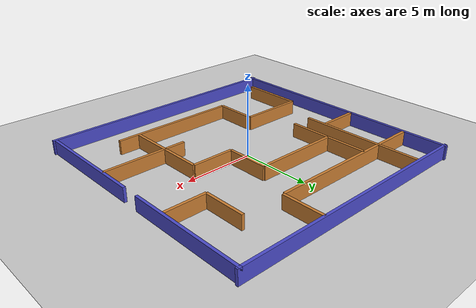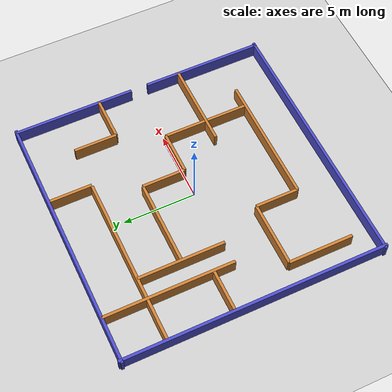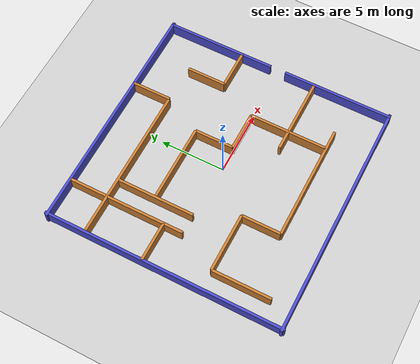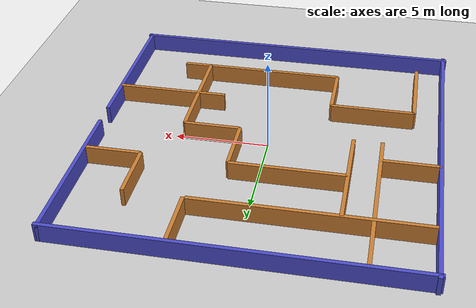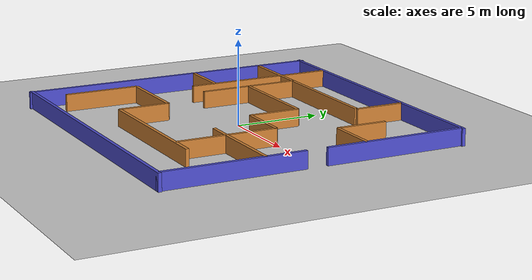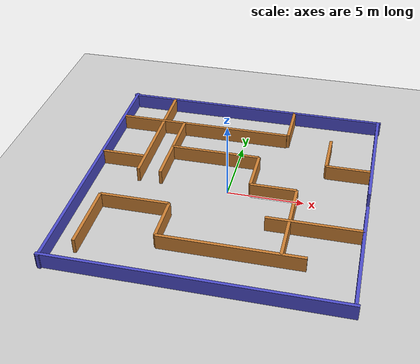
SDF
<?xml version="1.0" ?>
<sdf version="1.8">
  <world name="maze_world">

    <!-- ==================== CONFIGURACIÓN BÁSICA ==================== -->
    <physics name="1ms" type="ignored">
      <max_step_size>0.001</max_step_size>
      <real_time_factor>1.0</real_time_factor>
    </physics>

    <plugin filename="gz-sim-physics-system"
      name="gz::sim::systems::Physics"/>
    <plugin filename="gz-sim-sensors-system"
      name="gz::sim::systems::Sensors">
      <render_engine>ogre2</render_engine>
    </plugin>
    <plugin filename="gz-sim-scene-broadcaster-system"
      name="gz::sim::systems::SceneBroadcaster"/>
    <plugin filename="gz-sim-user-commands-system"
      name="gz::sim::systems::UserCommands"/>

    <!-- Luz solar -->
    <light name="sun" type="directional">
      <cast_shadows>true</cast_shadows>
      <pose>0 0 10 0 0 0</pose>
      <diffuse>0.8 0.8 0.8 1</diffuse>
      <specular>0.2 0.2 0.2 1</specular>
      <direction>-0.5 0.1 -0.9</direction>
    </light>

    <!-- Suelo -->
    <model name="ground_plane">
      <static>true</static>
      <link name="link">
        <collision name="collision">
          <geometry><plane><normal>0 0 1</normal><size>50 50</size></plane></geometry>
        </collision>
        <visual name="visual">
          <geometry><plane><normal>0 0 1</normal><size>50 50</size></plane></geometry>
          <material>
            <ambient>0.8 0.8 0.8 1</ambient>
            <diffuse>0.8 0.8 0.8 1</diffuse>
          </material>
        </visual>
      </link>
    </model>

    <!-- ==================== MACRO DE PARED ==================== -->
    <!-- Cada pared es una caja estática                         -->
    <!-- Formato pose: X Y Z Roll Pitch Yaw                      -->
    <!-- Altura de paredes: 1.0m  Grosor: 0.2m                  -->
    <!-- Pasillos de 1.5m de ancho (robot 1.0m + margen 0.5m)  -->

    <!-- ==================== BORDE EXTERIOR ==================== -->

    <!-- Pared Norte (arriba) -->
    <model name="wall_north">
      <static>true</static>
      <pose>0 9 0.5 0 0 0</pose>
      <link name="link">
        <collision name="collision">
          <geometry><box><size>18.4 0.2 1.0</size></box></geometry>
        </collision>
        <visual name="visual">
          <geometry><box><size>18.4 0.2 1.0</size></box></geometry>
          <material><ambient>0.3 0.3 0.8 1</ambient><diffuse>0.3 0.3 0.8 1</diffuse></material>
        </visual>
      </link>
    </model>

    <!-- Pared Sur (abajo) -->
    <model name="wall_south">
      <static>true</static>
      <pose>0 -9 0.5 0 0 0</pose>
      <link name="link">
        <collision name="collision">
          <geometry><box><size>18.4 0.2 1.0</size></box></geometry>
        </collision>
        <visual name="visual">
          <geometry><box><size>18.4 0.2 1.0</size></box></geometry>
          <material><ambient>0.3 0.3 0.8 1</ambient><diffuse>0.3 0.3 0.8 1</diffuse></material>
        </visual>
      </link>
    </model>

    <!-- Pared Oeste (izquierda) -->
    <model name="wall_west">
      <static>true</static>
      <pose>-9 0 0.5 0 0 0</pose>
      <link name="link">
        <collision name="collision">
          <geometry><box><size>0.2 18.4 1.0</size></box></geometry>
        </collision>
        <visual name="visual">
          <geometry><box><size>0.2 18.4 1.0</size></box></geometry>
          <material><ambient>0.3 0.3 0.8 1</ambient><diffuse>0.3 0.3 0.8 1</diffuse></material>
        </visual>
      </link>
    </model>

    <!-- Pared Este (derecha) — con hueco de salida en Y=0 -->
    <model name="wall_east_north">
      <static>true</static>
      <pose>9 4.85 0.5 0 0 0</pose>
      <link name="link">
        <collision name="collision">
          <geometry><box><size>0.2 8.5 1.0</size></box></geometry>
        </collision>
        <visual name="visual">
          <geometry><box><size>0.2 8.5 1.0</size></box></geometry>
          <material><ambient>0.3 0.3 0.8 1</ambient><diffuse>0.3 0.3 0.8 1</diffuse></material>
        </visual>
      </link>
    </model>

    <model name="wall_east_south">
      <static>true</static>
      <pose>9 -4.85 0.5 0 0 0</pose>
      <link name="link">
        <collision name="collision">
          <geometry><box><size>0.2 8.5 1.0</size></box></geometry>
        </collision>
        <visual name="visual">
          <geometry><box><size>0.2 8.5 1.0</size></box></geometry>
          <material><ambient>0.3 0.3 0.8 1</ambient><diffuse>0.3 0.3 0.8 1</diffuse></material>
        </visual>
      </link>
    </model>

    <!-- ==================== PAREDES INTERIORES ==================== -->
    <!-- Laberinto simplemente conexo — todas las paredes conectadas  -->
    <!-- El robot entra por X=-9,Y=0 mirando al Este (+X)            -->
    <!-- La salida está en X=+9, Y=0                                  -->

    <!-- Fila 1 — Pared horizontal superior interior -->
    <model name="iwall_h1">
      <static>true</static>
      <pose>-3 6 0.5 0 0 0</pose>
      <link name="link">
        <collision name="collision"><geometry><box><size>11.8 0.2 1.0</size></box></geometry></collision>
        <visual name="visual">
          <geometry><box><size>11.8 0.2 1.0</size></box></geometry>
          <material><ambient>0.8 0.5 0.2 1</ambient><diffuse>0.8 0.5 0.2 1</diffuse></material>
        </visual>
      </link>
    </model>

    <!-- Bajada desde pared norte hasta h1 — lado derecho -->
    <model name="iwall_v1">
      <static>true</static>
      <pose>3 7.5 0.5 0 0 0</pose>
      <link name="link">
        <collision name="collision"><geometry><box><size>0.2 3.0 1.0</size></box></geometry></collision>
        <visual name="visual">
          <geometry><box><size>0.2 3.0 1.0</size></box></geometry>
          <material><ambient>0.8 0.5 0.2 1</ambient><diffuse>0.8 0.5 0.2 1</diffuse></material>
        </visual>
      </link>
    </model>

    <!-- Pared vertical izquierda interior — crea pasillo de entrada -->
    <model name="iwall_v2">
      <static>true</static>
      <pose>-6 4.5 0.5 0 0 0</pose>
      <link name="link">
        <collision name="collision"><geometry><box><size>0.2 9.0 1.0</size></box></geometry></collision>
        <visual name="visual">
          <geometry><box><size>0.2 9.0 1.0</size></box></geometry>
          <material><ambient>0.8 0.5 0.2 1</ambient><diffuse>0.8 0.5 0.2 1</diffuse></material>
        </visual>
      </link>
    </model>

    <!-- Pared horizontal media izquierda -->
    <model name="iwall_h2">
      <static>true</static>
      <pose>-7.5 1.5 0.5 0 0 0</pose>
      <link name="link">
        <collision name="collision"><geometry><box><size>3.0 0.2 1.0</size></box></geometry></collision>
        <visual name="visual">
          <geometry><box><size>3.0 0.2 1.0</size></box></geometry>
          <material><ambient>0.8 0.5 0.2 1</ambient><diffuse>0.8 0.5 0.2 1</diffuse></material>
        </visual>
      </link>
    </model>

    <!-- Pared vertical central izquierda -->
    <model name="iwall_v3">
      <static>true</static>
      <pose>-4.5 3 0.5 0 0 0</pose>
      <link name="link">
        <collision name="collision"><geometry><box><size>0.2 6.0 1.0</size></box></geometry></collision>
        <visual name="visual">
          <geometry><box><size>0.2 6.0 1.0</size></box></geometry>
          <material><ambient>0.8 0.5 0.2 1</ambient><diffuse>0.8 0.5 0.2 1</diffuse></material>
        </visual>
      </link>
    </model>

    <!-- Pared horizontal media centro -->
    <model name="iwall_h3">
      <static>true</static>
      <pose>-1.5 3 0.5 0 0 0</pose>
      <link name="link">
        <collision name="collision"><geometry><box><size>6.0 0.2 1.0</size></box></geometry></collision>
        <visual name="visual">
          <geometry><box><size>6.0 0.2 1.0</size></box></geometry>
          <material><ambient>0.8 0.5 0.2 1</ambient><diffuse>0.8 0.5 0.2 1</diffuse></material>
        </visual>
      </link>
    </model>

    <!-- Pared vertical centro -->
    <model name="iwall_v4">
      <static>true</static>
      <pose>1.5 1.5 0.5 0 0 0</pose>
      <link name="link">
        <collision name="collision"><geometry><box><size>0.2 3.0 1.0</size></box></geometry></collision>
        <visual name="visual">
          <geometry><box><size>0.2 3.0 1.0</size></box></geometry>
          <material><ambient>0.8 0.5 0.2 1</ambient><diffuse>0.8 0.5 0.2 1</diffuse></material>
        </visual>
      </link>
    </model>

    <!-- Pared horizontal inferior centro -->
    <model name="iwall_h4">
      <static>true</static>
      <pose>3 0 0.5 0 0 0</pose>
      <link name="link">
        <collision name="collision"><geometry><box><size>3.0 0.2 1.0</size></box></geometry></collision>
        <visual name="visual">
          <geometry><box><size>3.0 0.2 1.0</size></box></geometry>
          <material><ambient>0.8 0.5 0.2 1</ambient><diffuse>0.8 0.5 0.2 1</diffuse></material>
        </visual>
      </link>
    </model>

    <!-- Pared vertical derecha interior -->
    <model name="iwall_v5">
      <static>true</static>
      <pose>4.5 -3 0.5 0 0 0</pose>
      <link name="link">
        <collision name="collision"><geometry><box><size>0.2 6.0 1.0</size></box></geometry></collision>
        <visual name="visual">
          <geometry><box><size>0.2 6.0 1.0</size></box></geometry>
          <material><ambient>0.8 0.5 0.2 1</ambient><diffuse>0.8 0.5 0.2 1</diffuse></material>
        </visual>
      </link>
    </model>

    <!-- Pared horizontal inferior derecha -->
    <model name="iwall_h5">
      <static>true</static>
      <pose>1.5 -6 0.5 0 0 0</pose>
      <link name="link">
        <collision name="collision"><geometry><box><size>9.0 0.2 1.0</size></box></geometry></collision>
        <visual name="visual">
          <geometry><box><size>9.0 0.2 1.0</size></box></geometry>
          <material><ambient>0.8 0.5 0.2 1</ambient><diffuse>0.8 0.5 0.2 1</diffuse></material>
        </visual>
      </link>
    </model>

    <!-- Pared vertical inferior izquierda -->
    <model name="iwall_v6">
      <static>true</static>
      <pose>-3 -4.5 0.5 0 0 0</pose>
      <link name="link">
        <collision name="collision"><geometry><box><size>0.2 3.0 1.0</size></box></geometry></collision>
        <visual name="visual">
          <geometry><box><size>0.2 3.0 1.0</size></box></geometry>
          <material><ambient>0.8 0.5 0.2 1</ambient><diffuse>0.8 0.5 0.2 1</diffuse></material>
        </visual>
      </link>
    </model>

    <!-- Pared horizontal inferior centro-izquierda -->
    <model name="iwall_h6">
      <static>true</static>
      <pose>-5.25 -3 0.5 0 0 0</pose>
      <link name="link">
        <collision name="collision"><geometry><box><size>4.5 0.2 1.0</size></box></geometry></collision>
        <visual name="visual">
          <geometry><box><size>4.5 0.2 1.0</size></box></geometry>
          <material><ambient>0.8 0.5 0.2 1</ambient><diffuse>0.8 0.5 0.2 1</diffuse></material>
        </visual>
      </link>
    </model>

    <!-- Pared vertical extremo inferior izquierdo -->
    <model name="iwall_v7">
      <static>true</static>
      <pose>-7.5 -5.25 0.5 0 0 0</pose>
      <link name="link">
        <collision name="collision"><geometry><box><size>0.2 4.5 1.0</size></box></geometry></collision>
        <visual name="visual">
          <geometry><box><size>0.2 4.5 1.0</size></box></geometry>
          <material><ambient>0.8 0.5 0.2 1</ambient><diffuse>0.8 0.5 0.2 1</diffuse></material>
        </visual>
      </link>
    </model>

    <!-- Pared horizontal zona inferior derecha -->
    <model name="iwall_h7">
      <static>true</static>
      <pose>6 -3 0.5 0 0 0</pose>
      <link name="link">
        <collision name="collision"><geometry><box><size>6.0 0.2 1.0</size></box></geometry></collision>
        <visual name="visual">
          <geometry><box><size>6.0 0.2 1.0</size></box></geometry>
          <material><ambient>0.8 0.5 0.2 1</ambient><diffuse>0.8 0.5 0.2 1</diffuse></material>
        </visual>
      </link>
    </model>

    <!-- Pared vertical zona derecha superior -->
    <model name="iwall_v8">
      <static>true</static>
      <pose>6 4.5 0.5 0 0 0</pose>
      <link name="link">
        <collision name="collision"><geometry><box><size>0.2 3.0 1.0</size></box></geometry></collision>
        <visual name="visual">
          <geometry><box><size>0.2 3.0 1.0</size></box></geometry>
          <material><ambient>0.8 0.5 0.2 1</ambient><diffuse>0.8 0.5 0.2 1</diffuse></material>
        </visual>
      </link>
    </model>

    <!-- Pared horizontal zona superior derecha -->
    <model name="iwall_h8">
      <static>true</static>
      <pose>7.5 3 0.5 0 0 0</pose>
      <link name="link">
        <collision name="collision"><geometry><box><size>3.0 0.2 1.0</size></box></geometry></collision>
        <visual name="visual">
          <geometry><box><size>3.0 0.2 1.0</size></box></geometry>
          <material><ambient>0.8 0.5 0.2 1</ambient><diffuse>0.8 0.5 0.2 1</diffuse></material>
        </visual>
      </link>
    </model>

  </world>
</sdf>
